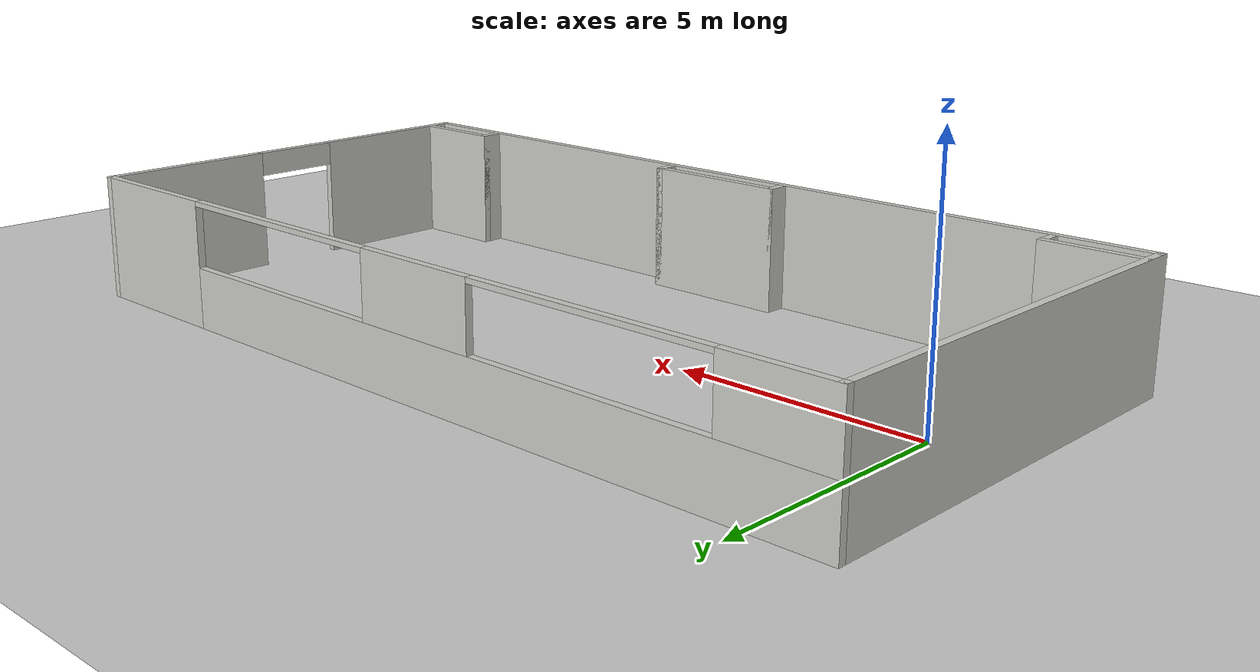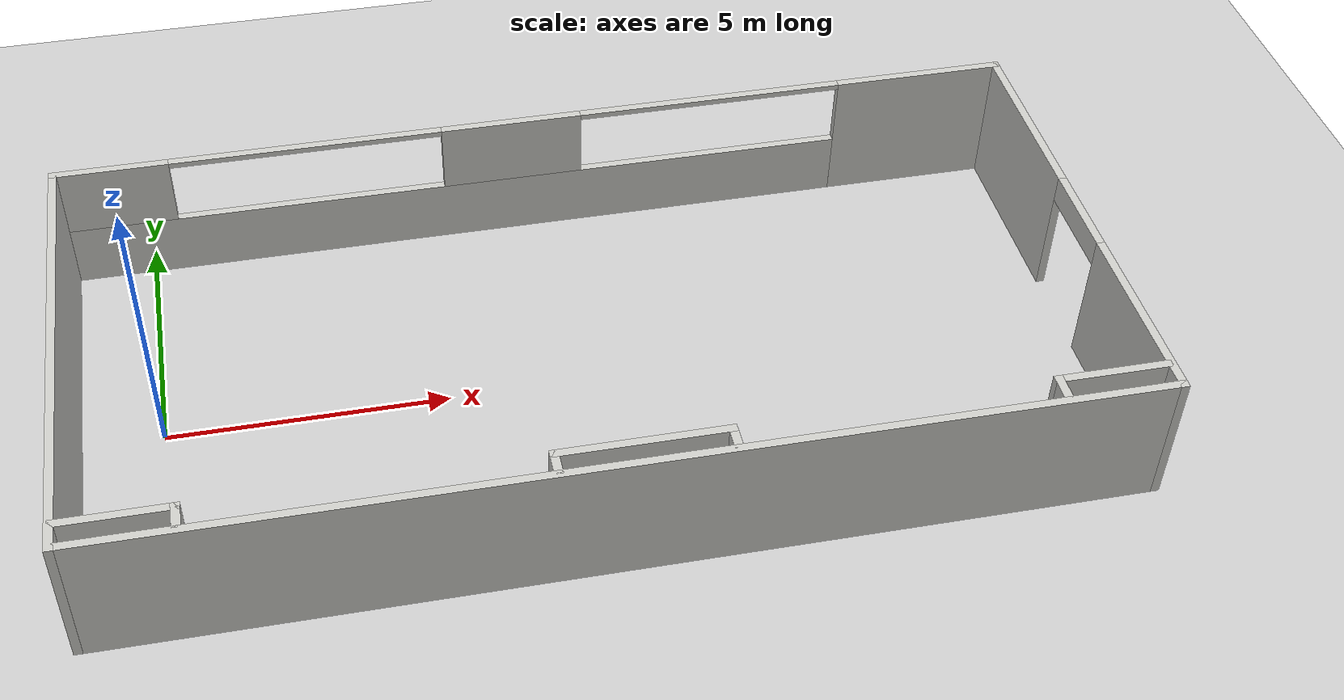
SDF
<sdf version="1.6">
 <world name="default">
  <light name="sun" type="directional">
   <pose>0 0 10 0 -0 0</pose>
   <diffuse>0.8 0.8 0.8 1</diffuse>
   <specular>0.2 0.2 0.2 1</specular>
   <attenuation>
    <range>1000</range>
    <constant>0.9</constant>
    <linear>0.01</linear>
    <quadratic>0.001</quadratic>
   </attenuation>
   <direction>-0.5 0.1 -0.9</direction>
  </light>
  <model name="ground_plane">
   <static>1</static>
   <link name="link">
    <collision name="collision">
     <geometry><plane><normal>0 0 1</normal><size>100 100</size></plane></geometry>
     <surface>
      <contact><collide_bitmask>65535</collide_bitmask></contact>
      <friction><ode><mu>100</mu><mu2>50</mu2></ode></friction>
     </surface>
    </collision>
    <visual name="visual">
     <cast_shadows>0</cast_shadows>
     <geometry><plane><normal>0 0 1</normal><size>100 100</size></plane></geometry>
     <material>
      <script><uri>file://media/materials/scripts/gazebo.material</uri><name>Gazebo/Grey</name></script>
     </material>
    </visual>
   </link>
  </model>
  <gravity>0 0 -9.8</gravity>
  <magnetic_field>6e-06 2.3e-05 -4.2e-05</magnetic_field>
  <atmosphere type="adiabatic"/>
  <physics name="default_physics" default="0" type="ode">
   <max_step_size>0.001</max_step_size>
   <real_time_factor>1</real_time_factor>
   <real_time_update_rate>1000</real_time_update_rate>
  </physics>
  <scene><ambient>0.4 0.4 0.4 1</ambient><background>0.7 0.7 0.7 1</background><shadows>1</shadows></scene>
  <audio><device>default</device></audio>
  <spherical_coordinates>
   <surface_model>EARTH_WGS84</surface_model>
   <latitude_deg>0</latitude_deg>
   <longitude_deg>0</longitude_deg>
   <elevation>0</elevation>
   <heading_deg>0</heading_deg>
  </spherical_coordinates>
  <model name="lab_room">
   <pose>7.42648 0.06974 0 0 -0 0</pose>
   <link name="Wall_1">
    <collision name="Wall_1_Collision">
     <geometry><box><size>9 0.15 2.5</size></box></geometry>
     <pose>0 0 1.25 0 -0 0</pose>
    </collision>
    <visual name="Wall_1_Visual">
     <pose>0 0 1.25 0 -0 0</pose>
     <geometry><box><size>9 0.15 2.5</size></box></geometry>
     <material>
      <script><uri>file://media/materials/scripts/gazebo.material</uri><name>Gazebo/CeilingTiled</name></script>
      <ambient>1 1 1 1</ambient>
     </material>
     <meta><layer>0</layer></meta>
    </visual>
    <pose>-8.925 0 0 0 -0 -1.5708</pose>
   </link>
   <link name="Wall_10">
    <collision name="Wall_10_Collision">
     <geometry><box><size>0.5 0.15 2.5</size></box></geometry>
     <pose>0 0 1.25 0 -0 0</pose>
    </collision>
    <visual name="Wall_10_Visual">
     <pose>0 0 1.25 0 -0 0</pose>
     <geometry><box><size>0.5 0.15 2.5</size></box></geometry>
     <material>
      <script><uri>file://media/materials/scripts/gazebo.material</uri><name>Gazebo/CeilingTiled</name></script>
      <ambient>1 1 1 1</ambient>
     </material>
     <meta><layer>0</layer></meta>
    </visual>
    <pose>7.0054 -4.11725 0 0 -0 -1.5708</pose>
   </link>
   <link name="Wall_12">
    <collision name="Wall_12_Collision">
     <geometry><box><size>0.5 0.15 2.5</size></box></geometry>
     <pose>0 0 1.25 0 -0 0</pose>
    </collision>
    <visual name="Wall_12_Visual">
     <pose>0 0 1.25 0 -0 0</pose>
     <geometry><box><size>0.5 0.15 2.5</size></box></geometry>
     <material>
      <script><uri>file://media/materials/scripts/gazebo.material</uri><name>Gazebo/CeilingTiled</name></script>
      <ambient>1 1 1 1</ambient>
     </material>
     <meta><layer>0</layer></meta>
    </visual>
    <pose>-1.26173 -4.16952 0 0 -0 1.5708</pose>
   </link>
   <link name="Wall_13">
    <collision name="Wall_13_Collision">
     <geometry><box><size>3 0.15 2.5</size></box></geometry>
     <pose>0 0 1.25 0 -0 0</pose>
    </collision>
    <visual name="Wall_13_Visual">
     <pose>0 0 1.25 0 -0 0</pose>
     <geometry><box><size>3 0.15 2.5</size></box></geometry>
     <material>
      <script><uri>file://media/materials/scripts/gazebo.material</uri><name>Gazebo/CeilingTiled</name></script>
      <ambient>1 1 1 1</ambient>
     </material>
     <meta><layer>0</layer></meta>
    </visual>
    <pose>0.163271 -3.99452 0 0 -0 0</pose>
   </link>
   <link name="Wall_14">
    <collision name="Wall_14_Collision">
     <geometry><box><size>0.5 0.15 2.5</size></box></geometry>
     <pose>0 0 1.25 0 -0 0</pose>
    </collision>
    <visual name="Wall_14_Visual">
     <pose>0 0 1.25 0 -0 0</pose>
     <geometry><box><size>0.5 0.15 2.5</size></box></geometry>
     <material>
      <script><uri>file://media/materials/scripts/gazebo.material</uri><name>Gazebo/CeilingTiled</name></script>
      <ambient>1 1 1 1</ambient>
     </material>
     <meta><layer>0</layer></meta>
    </visual>
    <pose>1.58827 -4.16952 0 0 -0 -1.5708</pose>
   </link>
   <link name="Wall_16">
    <collision name="Wall_16_Collision">
     <geometry><box><size>2 0.15 2.5</size></box></geometry>
     <pose>0 0 1.25 0 -0 0</pose>
    </collision>
    <visual name="Wall_16_Visual">
     <pose>0 0 1.25 0 -0 0</pose>
     <geometry><box><size>2 0.15 2.5</size></box></geometry>
     <material>
      <script><uri>file://media/materials/scripts/gazebo.material</uri><name>Gazebo/CeilingTiled</name></script>
      <ambient>1 1 1 1</ambient>
     </material>
     <meta><layer>0</layer></meta>
    </visual>
    <pose>-7.97989 -3.96236 0 0 -0 0</pose>
   </link>
   <link name="Wall_17">
    <collision name="Wall_17_Collision">
     <geometry><box><size>0.5 0.15 2.5</size></box></geometry>
     <pose>0 0 1.25 0 -0 0</pose>
    </collision>
    <visual name="Wall_17_Visual">
     <pose>0 0 1.25 0 -0 0</pose>
     <geometry><box><size>0.5 0.15 2.5</size></box></geometry>
     <material>
      <script><uri>file://media/materials/scripts/gazebo.material</uri><name>Gazebo/CeilingTiled</name></script>
      <ambient>1 1 1 1</ambient>
     </material>
     <meta><layer>0</layer></meta>
    </visual>
    <pose>-7.05489 -4.13736 0 0 -0 -1.5708</pose>
   </link>
   <link name="Wall_2">
    <collision name="Wall_2_Collision">
     <geometry><box><size>18 0.15 2.5</size></box></geometry>
     <pose>0 0 1.25 0 -0 0</pose>
    </collision>
    <visual name="Wall_2_Visual">
     <pose>0 0 1.25 0 -0 0</pose>
     <geometry><box><size>18 0.15 2.5</size></box></geometry>
     <material>
      <script><uri>file://media/materials/scripts/gazebo.material</uri><name>Gazebo/CeilingTiled</name></script>
      <ambient>1 1 1 1</ambient>
     </material>
     <meta><layer>0</layer></meta>
    </visual>
    <pose>0 -4.425 0 0 -0 0</pose>
   </link>
   <link name="Wall_3">
    <pose>8.925 0 0 0 -0 1.5708</pose>
    <visual name="Wall_3_Visual_0">
     <pose>-2.71005 0 1.25 0 -0 0</pose>
     <geometry><box><size>3.5799 0.15 2.5</size></box></geometry>
     <material>
      <script><uri>file://media/materials/scripts/gazebo.material</uri><name>Gazebo/CeilingTiled</name></script>
      <ambient>1 1 1 1</ambient>
     </material>
     <meta><layer>0</layer></meta>
    </visual>
    <collision name="Wall_3_Collision_0">
     <geometry><box><size>3.5799 0.15 2.5</size></box></geometry>
     <pose>-2.71005 0 1.25 0 -0 0</pose>
    </collision>
    <visual name="Wall_3_Visual_1">
     <pose>2.68995 0 1.25 0 -0 0</pose>
     <geometry><box><size>3.6201 0.15 2.5</size></box></geometry>
     <material>
      <script><uri>file://media/materials/scripts/gazebo.material</uri><name>Gazebo/CeilingTiled</name></script>
      <ambient>1 1 1 1</ambient>
     </material>
     <meta><layer>0</layer></meta>
    </visual>
    <collision name="Wall_3_Collision_1">
     <geometry><box><size>3.6201 0.15 2.5</size></box></geometry>
     <pose>2.68995 0 1.25 0 -0 0</pose>
    </collision>
    <visual name="Wall_3_Visual_2">
     <pose>-0.020099 0 2.25 0 -0 0</pose>
     <geometry><box><size>1.8 0.15 0.5</size></box></geometry>
     <material>
      <script><uri>file://media/materials/scripts/gazebo.material</uri><name>Gazebo/CeilingTiled</name></script>
      <ambient>1 1 1 1</ambient>
     </material>
     <meta><layer>0</layer></meta>
    </visual>
    <collision name="Wall_3_Collision_2">
     <geometry><box><size>1.8 0.15 0.5</size></box></geometry>
     <pose>-0.020099 0 2.25 0 -0 0</pose>
    </collision>
   </link>
   <link name="Wall_4">
    <pose>0 4.425 0 0 -0 3.14159</pose>
    <visual name="Wall_4_Visual_0">
     <pose>-7.38191 0 1.25 0 -0 0</pose>
     <geometry><box><size>3.23617 0.15 2.5</size></box></geometry>
     <material>
      <script><uri>file://media/materials/scripts/gazebo.material</uri><name>Gazebo/CeilingTiled</name></script>
      <ambient>1 1 1 1</ambient>
     </material>
     <meta><layer>0</layer></meta>
    </visual>
    <collision name="Wall_4_Collision_0">
     <geometry><box><size>3.23617 0.15 2.5</size></box></geometry>
     <pose>-7.38191 0 1.25 0 -0 0</pose>
    </collision>
    <visual name="Wall_4_Visual_1">
     <pose>1.61809 0 0.6 0 -0 0</pose>
     <geometry><box><size>14.7638 0.15 1.2</size></box></geometry>
     <material>
      <script><uri>file://media/materials/scripts/gazebo.material</uri><name>Gazebo/CeilingTiled</name></script>
      <ambient>1 1 1 1</ambient>
     </material>
     <meta><layer>0</layer></meta>
    </visual>
    <collision name="Wall_4_Collision_1">
     <geometry><box><size>14.7638 0.15 1.2</size></box></geometry>
     <pose>1.61809 0 0.6 0 -0 0</pose>
    </collision>
    <visual name="Wall_4_Visual_2">
     <pose>0.547697 0 1.85 0 -0 0</pose>
     <geometry><box><size>2.62304 0.15 1.3</size></box></geometry>
     <material>
      <script><uri>file://media/materials/scripts/gazebo.material</uri><name>Gazebo/CeilingTiled</name></script>
      <ambient>1 1 1 1</ambient>
     </material>
     <meta><layer>0</layer></meta>
    </visual>
    <collision name="Wall_4_Collision_2">
     <geometry><box><size>2.62304 0.15 1.3</size></box></geometry>
     <pose>0.547697 0 1.85 0 -0 0</pose>
    </collision>
    <visual name="Wall_4_Visual_3">
     <pose>7.92961 0 1.85 0 -0 0</pose>
     <geometry><box><size>2.14078 0.15 1.3</size></box></geometry>
     <material>
      <script><uri>file://media/materials/scripts/gazebo.material</uri><name>Gazebo/CeilingTiled</name></script>
      <ambient>1 1 1 1</ambient>
     </material>
     <meta><layer>0</layer></meta>
    </visual>
    <collision name="Wall_4_Collision_3">
     <geometry><box><size>2.14078 0.15 1.3</size></box></geometry>
     <pose>7.92961 0 1.85 0 -0 0</pose>
    </collision>
    <visual name="Wall_4_Visual_4">
     <pose>-3.26383 0 2.45 0 -0 0</pose>
     <geometry><box><size>5 0.15 0.1</size></box></geometry>
     <material>
      <script><uri>file://media/materials/scripts/gazebo.material</uri><name>Gazebo/CeilingTiled</name></script>
      <ambient>1 1 1 1</ambient>
     </material>
     <meta><layer>0</layer></meta>
    </visual>
    <collision name="Wall_4_Collision_4">
     <geometry><box><size>5 0.15 0.1</size></box></geometry>
     <pose>-3.26383 0 2.45 0 -0 0</pose>
    </collision>
    <visual name="Wall_4_Visual_5">
     <pose>4.35922 0 2.45 0 -0 0</pose>
     <geometry><box><size>5 0.15 0.1</size></box></geometry>
     <material>
      <script><uri>file://media/materials/scripts/gazebo.material</uri><name>Gazebo/CeilingTiled</name></script>
      <ambient>1 1 1 1</ambient>
     </material>
     <meta><layer>0</layer></meta>
    </visual>
    <collision name="Wall_4_Collision_5">
     <geometry><box><size>5 0.15 0.1</size></box></geometry>
     <pose>4.35922 0 2.45 0 -0 0</pose>
    </collision>
   </link>
   <link name="Wall_9">
    <collision name="Wall_9_Collision">
     <geometry><box><size>2 0.15 2.5</size></box></geometry>
     <pose>0 0 1.25 0 -0 0</pose>
    </collision>
    <visual name="Wall_9_Visual">
     <pose>0 0 1.25 0 -0 0</pose>
     <geometry><box><size>2 0.15 2.5</size></box></geometry>
     <material>
      <script><uri>file://media/materials/scripts/gazebo.material</uri><name>Gazebo/CeilingTiled</name></script>
      <ambient>1 1 1 1</ambient>
     </material>
     <meta><layer>0</layer></meta>
    </visual>
    <pose>7.9304 -3.94225 0 0 -0 3.14159</pose>
   </link>
   <static>1</static>
  </model>
 </world>
</sdf>
